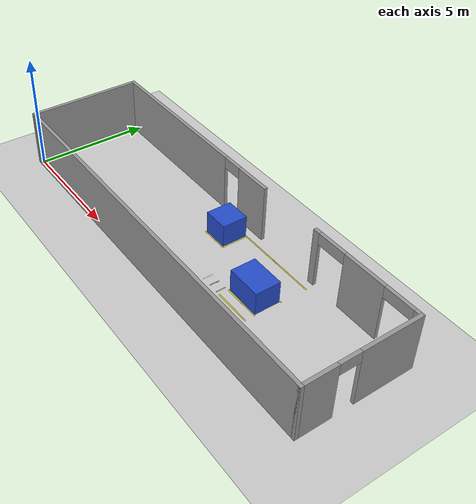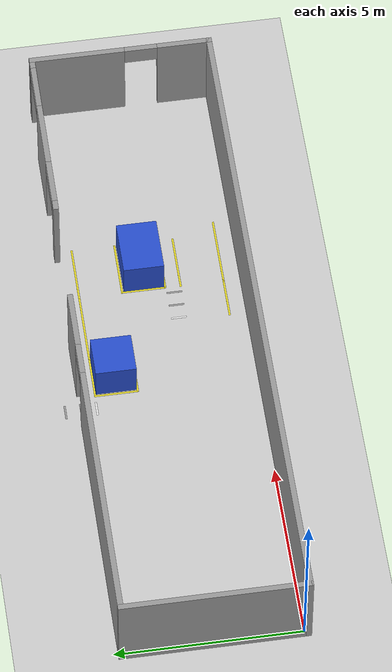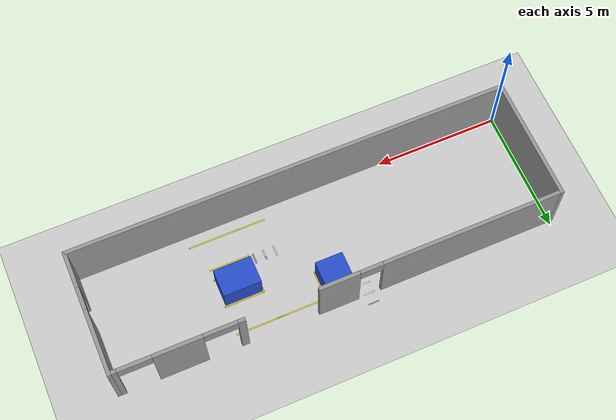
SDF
<sdf version="1.6">
 <world name="default">
  <model name="ground_plane">
   <static>1</static>
   <link name="link">
    <collision name="collision">
     <geometry><plane><normal>0 0 1</normal><size>100 100</size></plane></geometry>
     <surface><friction><ode><mu>100</mu><mu2>50</mu2></ode></friction></surface>
    </collision>
    <visual name="visual">
     <cast_shadows>0</cast_shadows>
     <geometry><plane><normal>0 0 1</normal><size>100 100</size></plane></geometry>
     <material>
      <script><uri>file://media/materials/scripts/gazebo.material</uri><name>Gazebo/Grey</name></script>
     </material>
    </visual>
   </link>
  </model>
  <model name="makine1_160x120">
   <link name="link_1">
    <inertial>
     <mass>1</mass>
     <inertia>
      <ixx>0.166667</ixx>
      <ixy>0</ixy>
      <ixz>0</ixz>
      <iyy>0.166667</iyy>
      <iyz>0</iyz>
      <izz>0.166667</izz>
     </inertia>
    </inertial>
    <visual name="visual">
     <pose>0 0 0.5 0 -0 0</pose>
     <geometry><box><size>1.5 1.1 1</size></box></geometry>
     <material>
      <lighting>1</lighting>
      <script><uri>file://media/materials/scripts/gazebo.material</uri><name>Gazebo/Blue</name></script>
     </material>
    </visual>
    <collision name="collision">
     <pose>0 0 0.5 0 -0 0</pose>
     <geometry><box><size>1.5 1.1 1</size></box></geometry>
     <surface>
      <friction>
       <ode><mu>1</mu><mu2>1</mu2><fdir1>0 0 0</fdir1><slip1>0</slip1><slip2>0</slip2></ode>
       <torsional>
        <coefficient>1</coefficient>
        <patch_radius>0</patch_radius>
        <surface_radius>0</surface_radius>
        <use_patch_radius>1</use_patch_radius>
        <ode><slip>0</slip></ode>
       </torsional>
      </friction>
      <bounce><restitution_coefficient>0</restitution_coefficient><threshold>1e+06</threshold></bounce>
      <contact>
       <collide_without_contact>0</collide_without_contact>
       <collide_without_contact_bitmask>1</collide_without_contact_bitmask>
       <collide_bitmask>1</collide_bitmask>
       <ode>
        <soft_cfm>0</soft_cfm>
        <soft_erp>0.2</soft_erp>
        <kp>1e+13</kp>
        <kd>1</kd>
        <max_vel>0.01</max_vel>
        <min_depth>0</min_depth>
       </ode>
       <bullet>
        <split_impulse>1</split_impulse>
        <split_impulse_penetration_threshold>-0.01</split_impulse_penetration_threshold>
        <soft_cfm>0</soft_cfm>
        <soft_erp>0.2</soft_erp>
        <kp>1e+13</kp>
        <kd>1</kd>
       </bullet>
      </contact>
     </surface>
    </collision>
   </link>
   <static>1</static>
   <pose>12 2.6 0 0 -0 0</pose>
  </model>
  <model name="line160cm">
   <link name="link_1">
    <inertial>
     <mass>1</mass>
     <inertia>
      <ixx>0.166667</ixx>
      <ixy>0</ixy>
      <ixz>0</ixz>
      <iyy>0.166667</iyy>
      <iyz>0</iyz>
      <izz>0.166667</izz>
     </inertia>
    </inertial>
    <visual name="visual">
     <geometry><box><size>1.6 0.05 0.001</size></box></geometry>
     <material>
      <script><uri>file://media/materials/scripts/gazebo.material</uri><name>Gazebo/Yellow</name></script>
     </material>
    </visual>
    <collision name="collision">
     <geometry><box><size>1.6 0.05 1e-05</size></box></geometry>
     <surface>
      <friction>
       <ode><mu>1</mu><mu2>1</mu2><fdir1>0 0 0</fdir1><slip1>0</slip1><slip2>0</slip2></ode>
       <torsional>
        <coefficient>1</coefficient>
        <patch_radius>0</patch_radius>
        <surface_radius>0</surface_radius>
        <use_patch_radius>1</use_patch_radius>
        <ode><slip>0</slip></ode>
       </torsional>
      </friction>
      <bounce><restitution_coefficient>0</restitution_coefficient><threshold>1e+06</threshold></bounce>
      <contact>
       <collide_without_contact>0</collide_without_contact>
       <collide_without_contact_bitmask>1</collide_without_contact_bitmask>
       <collide_bitmask>1</collide_bitmask>
       <ode>
        <soft_cfm>0</soft_cfm>
        <soft_erp>0.2</soft_erp>
        <kp>1e+13</kp>
        <kd>1</kd>
        <max_vel>0.01</max_vel>
        <min_depth>0</min_depth>
       </ode>
       <bullet>
        <split_impulse>1</split_impulse>
        <split_impulse_penetration_threshold>-0.01</split_impulse_penetration_threshold>
        <soft_cfm>0</soft_cfm>
        <soft_erp>0.2</soft_erp>
        <kp>1e+13</kp>
        <kd>1</kd>
       </bullet>
      </contact>
     </surface>
    </collision>
   </link>
   <static>1</static>
   <pose>12 2.02 0 0 -0 0</pose>
  </model>
  <model name="line160cm_0">
   <link name="link_1">
    <inertial>
     <mass>1</mass>
     <inertia>
      <ixx>0.166667</ixx>
      <ixy>0</ixy>
      <ixz>0</ixz>
      <iyy>0.166667</iyy>
      <iyz>0</iyz>
      <izz>0.166667</izz>
     </inertia>
    </inertial>
    <visual name="visual">
     <geometry><box><size>1.6 0.05 0.001</size></box></geometry>
     <material>
      <script><uri>file://media/materials/scripts/gazebo.material</uri><name>Gazebo/Yellow</name></script>
     </material>
    </visual>
    <collision name="collision">
     <geometry><box><size>1.6 0.05 1e-05</size></box></geometry>
     <surface>
      <friction>
       <ode><mu>1</mu><mu2>1</mu2><fdir1>0 0 0</fdir1><slip1>0</slip1><slip2>0</slip2></ode>
       <torsional>
        <coefficient>1</coefficient>
        <patch_radius>0</patch_radius>
        <surface_radius>0</surface_radius>
        <use_patch_radius>1</use_patch_radius>
        <ode><slip>0</slip></ode>
       </torsional>
      </friction>
      <bounce><restitution_coefficient>0</restitution_coefficient><threshold>1e+06</threshold></bounce>
      <contact>
       <collide_without_contact>0</collide_without_contact>
       <collide_without_contact_bitmask>1</collide_without_contact_bitmask>
       <collide_bitmask>1</collide_bitmask>
       <ode>
        <soft_cfm>0</soft_cfm>
        <soft_erp>0.2</soft_erp>
        <kp>1e+13</kp>
        <kd>1</kd>
        <max_vel>0.01</max_vel>
        <min_depth>0</min_depth>
       </ode>
       <bullet>
        <split_impulse>1</split_impulse>
        <split_impulse_penetration_threshold>-0.01</split_impulse_penetration_threshold>
        <soft_cfm>0</soft_cfm>
        <soft_erp>0.2</soft_erp>
        <kp>1e+13</kp>
        <kd>1</kd>
       </bullet>
      </contact>
     </surface>
    </collision>
   </link>
   <static>1</static>
   <pose>12 3.2 0 0 -0 0</pose>
  </model>
  <model name="line120cm_0">
   <link name="link_1">
    <inertial>
     <mass>1</mass>
     <inertia>
      <ixx>0.166667</ixx>
      <ixy>0</ixy>
      <ixz>0</ixz>
      <iyy>0.166667</iyy>
      <iyz>0</iyz>
      <izz>0.166667</izz>
     </inertia>
    </inertial>
    <visual name="visual">
     <geometry><box><size>1.2 0.05 0.001</size></box></geometry>
     <material>
      <script><uri>file://media/materials/scripts/gazebo.material</uri><name>Gazebo/Yellow</name></script>
     </material>
    </visual>
    <collision name="collision">
     <geometry><box><size>1.2 0.05 1e-05</size></box></geometry>
     <surface>
      <friction>
       <ode><mu>1</mu><mu2>1</mu2><fdir1>0 0 0</fdir1><slip1>0</slip1><slip2>0</slip2></ode>
       <torsional>
        <coefficient>1</coefficient>
        <patch_radius>0</patch_radius>
        <surface_radius>0</surface_radius>
        <use_patch_radius>1</use_patch_radius>
        <ode><slip>0</slip></ode>
       </torsional>
      </friction>
      <bounce><restitution_coefficient>0</restitution_coefficient><threshold>1e+06</threshold></bounce>
      <contact>
       <collide_without_contact>0</collide_without_contact>
       <collide_without_contact_bitmask>1</collide_without_contact_bitmask>
       <collide_bitmask>1</collide_bitmask>
       <ode>
        <soft_cfm>0</soft_cfm>
        <soft_erp>0.2</soft_erp>
        <kp>1e+13</kp>
        <kd>1</kd>
        <max_vel>0.01</max_vel>
        <min_depth>0</min_depth>
       </ode>
       <bullet>
        <split_impulse>1</split_impulse>
        <split_impulse_penetration_threshold>-0.01</split_impulse_penetration_threshold>
        <soft_cfm>0</soft_cfm>
        <soft_erp>0.2</soft_erp>
        <kp>1e+13</kp>
        <kd>1</kd>
       </bullet>
      </contact>
     </surface>
    </collision>
   </link>
   <static>1</static>
   <pose>11.225 2.6 0 0 -0 1.5708</pose>
  </model>
  <model name="makine2_120x120_0">
   <link name="link_0">
    <inertial>
     <mass>1</mass>
     <inertia>
      <ixx>0.166667</ixx>
      <ixy>0</ixy>
      <ixz>0</ixz>
      <iyy>0.166667</iyy>
      <iyz>0</iyz>
      <izz>0.166667</izz>
     </inertia>
    </inertial>
    <visual name="visual">
     <pose>0 0 0.5 0 -0 0</pose>
     <geometry><box><size>1.1 1.1 1</size></box></geometry>
     <material>
      <lighting>1</lighting>
      <script><uri>file://media/materials/scripts/gazebo.material</uri><name>Gazebo/Blue</name></script>
     </material>
    </visual>
    <collision name="collision">
     <pose>0 0 0.5 0 -0 0</pose>
     <geometry><box><size>1.1 1.1 1</size></box></geometry>
     <surface>
      <friction>
       <ode><mu>1</mu><mu2>1</mu2><fdir1>0 0 0</fdir1><slip1>0</slip1><slip2>0</slip2></ode>
       <torsional>
        <coefficient>1</coefficient>
        <patch_radius>0</patch_radius>
        <surface_radius>0</surface_radius>
        <use_patch_radius>1</use_patch_radius>
        <ode><slip>0</slip></ode>
       </torsional>
      </friction>
      <bounce><restitution_coefficient>0</restitution_coefficient><threshold>1e+06</threshold></bounce>
      <contact>
       <collide_without_contact>0</collide_without_contact>
       <collide_without_contact_bitmask>1</collide_without_contact_bitmask>
       <collide_bitmask>1</collide_bitmask>
       <ode>
        <soft_cfm>0</soft_cfm>
        <soft_erp>0.2</soft_erp>
        <kp>1e+13</kp>
        <kd>1</kd>
        <max_vel>0.01</max_vel>
        <min_depth>0</min_depth>
       </ode>
       <bullet>
        <split_impulse>1</split_impulse>
        <split_impulse_penetration_threshold>-0.01</split_impulse_penetration_threshold>
        <soft_cfm>0</soft_cfm>
        <soft_erp>0.2</soft_erp>
        <kp>1e+13</kp>
        <kd>1</kd>
       </bullet>
      </contact>
     </surface>
    </collision>
   </link>
   <static>1</static>
   <pose>8.6 3.8 0 0 -0 0</pose>
  </model>
  <model name="line120cm_5">
   <link name="link_1">
    <inertial>
     <mass>1</mass>
     <inertia>
      <ixx>0.166667</ixx>
      <ixy>0</ixy>
      <ixz>0</ixz>
      <iyy>0.166667</iyy>
      <iyz>0</iyz>
      <izz>0.166667</izz>
     </inertia>
    </inertial>
    <visual name="visual">
     <geometry><box><size>1.2 0.05 0.001</size></box></geometry>
     <material>
      <script><uri>file://media/materials/scripts/gazebo.material</uri><name>Gazebo/Yellow</name></script>
     </material>
    </visual>
    <collision name="collision">
     <geometry><box><size>1.2 0.05 1e-05</size></box></geometry>
     <surface>
      <friction>
       <ode><mu>1</mu><mu2>1</mu2><fdir1>0 0 0</fdir1><slip1>0</slip1><slip2>0</slip2></ode>
       <torsional>
        <coefficient>1</coefficient>
        <patch_radius>0</patch_radius>
        <surface_radius>0</surface_radius>
        <use_patch_radius>1</use_patch_radius>
        <ode><slip>0</slip></ode>
       </torsional>
      </friction>
      <bounce><restitution_coefficient>0</restitution_coefficient><threshold>1e+06</threshold></bounce>
      <contact>
       <collide_without_contact>0</collide_without_contact>
       <collide_without_contact_bitmask>1</collide_without_contact_bitmask>
       <collide_bitmask>1</collide_bitmask>
       <ode>
        <soft_cfm>0</soft_cfm>
        <soft_erp>0.2</soft_erp>
        <kp>1e+13</kp>
        <kd>1</kd>
        <max_vel>0.01</max_vel>
        <min_depth>0</min_depth>
       </ode>
       <bullet>
        <split_impulse>1</split_impulse>
        <split_impulse_penetration_threshold>-0.01</split_impulse_penetration_threshold>
        <soft_cfm>0</soft_cfm>
        <soft_erp>0.2</soft_erp>
        <kp>1e+13</kp>
        <kd>1</kd>
       </bullet>
      </contact>
     </surface>
    </collision>
   </link>
   <static>1</static>
   <pose>8.6 4.375 0 0 -0 0</pose>
  </model>
  <model name="line120cm_6">
   <link name="link_1">
    <inertial>
     <mass>1</mass>
     <inertia>
      <ixx>0.166667</ixx>
      <ixy>0</ixy>
      <ixz>0</ixz>
      <iyy>0.166667</iyy>
      <iyz>0</iyz>
      <izz>0.166667</izz>
     </inertia>
    </inertial>
    <visual name="visual">
     <geometry><box><size>1.2 0.05 0.001</size></box></geometry>
     <material>
      <script><uri>file://media/materials/scripts/gazebo.material</uri><name>Gazebo/Yellow</name></script>
     </material>
    </visual>
    <collision name="collision">
     <geometry><box><size>1.2 0.05 1e-05</size></box></geometry>
     <surface>
      <friction>
       <ode><mu>1</mu><mu2>1</mu2><fdir1>0 0 0</fdir1><slip1>0</slip1><slip2>0</slip2></ode>
       <torsional>
        <coefficient>1</coefficient>
        <patch_radius>0</patch_radius>
        <surface_radius>0</surface_radius>
        <use_patch_radius>1</use_patch_radius>
        <ode><slip>0</slip></ode>
       </torsional>
      </friction>
      <bounce><restitution_coefficient>0</restitution_coefficient><threshold>1e+06</threshold></bounce>
      <contact>
       <collide_without_contact>0</collide_without_contact>
       <collide_without_contact_bitmask>1</collide_without_contact_bitmask>
       <collide_bitmask>1</collide_bitmask>
       <ode>
        <soft_cfm>0</soft_cfm>
        <soft_erp>0.2</soft_erp>
        <kp>1e+13</kp>
        <kd>1</kd>
        <max_vel>0.01</max_vel>
        <min_depth>0</min_depth>
       </ode>
       <bullet>
        <split_impulse>1</split_impulse>
        <split_impulse_penetration_threshold>-0.01</split_impulse_penetration_threshold>
        <soft_cfm>0</soft_cfm>
        <soft_erp>0.2</soft_erp>
        <kp>1e+13</kp>
        <kd>1</kd>
       </bullet>
      </contact>
     </surface>
    </collision>
   </link>
   <static>1</static>
   <pose>8 3.8 0 0 -0 1.5708</pose>
  </model>
  <model name="line120cm_7">
   <link name="link_1">
    <inertial>
     <mass>1</mass>
     <inertia>
      <ixx>0.166667</ixx>
      <ixy>0</ixy>
      <ixz>0</ixz>
      <iyy>0.166667</iyy>
      <iyz>0</iyz>
      <izz>0.166667</izz>
     </inertia>
    </inertial>
    <visual name="visual">
     <geometry><box><size>1.2 0.05 0.001</size></box></geometry>
     <material>
      <script><uri>file://media/materials/scripts/gazebo.material</uri><name>Gazebo/Yellow</name></script>
     </material>
    </visual>
    <collision name="collision">
     <geometry><box><size>1.2 0.05 1e-05</size></box></geometry>
     <surface>
      <friction>
       <ode><mu>1</mu><mu2>1</mu2><fdir1>0 0 0</fdir1><slip1>0</slip1><slip2>0</slip2></ode>
       <torsional>
        <coefficient>1</coefficient>
        <patch_radius>0</patch_radius>
        <surface_radius>0</surface_radius>
        <use_patch_radius>1</use_patch_radius>
        <ode><slip>0</slip></ode>
       </torsional>
      </friction>
      <bounce><restitution_coefficient>0</restitution_coefficient><threshold>1e+06</threshold></bounce>
      <contact>
       <collide_without_contact>0</collide_without_contact>
       <collide_without_contact_bitmask>1</collide_without_contact_bitmask>
       <collide_bitmask>1</collide_bitmask>
       <ode>
        <soft_cfm>0</soft_cfm>
        <soft_erp>0.2</soft_erp>
        <kp>1e+13</kp>
        <kd>1</kd>
        <max_vel>0.01</max_vel>
        <min_depth>0</min_depth>
       </ode>
       <bullet>
        <split_impulse>1</split_impulse>
        <split_impulse_penetration_threshold>-0.01</split_impulse_penetration_threshold>
        <soft_cfm>0</soft_cfm>
        <soft_erp>0.2</soft_erp>
        <kp>1e+13</kp>
        <kd>1</kd>
       </bullet>
      </contact>
     </surface>
    </collision>
   </link>
   <static>1</static>
   <pose>8.6 3.225 0 0 -0 0</pose>
  </model>
  <model name="line120cm_8">
   <link name="link_1">
    <inertial>
     <mass>1</mass>
     <inertia>
      <ixx>0.166667</ixx>
      <ixy>0</ixy>
      <ixz>0</ixz>
      <iyy>0.166667</iyy>
      <iyz>0</iyz>
      <izz>0.166667</izz>
     </inertia>
    </inertial>
    <visual name="visual">
     <geometry><box><size>1.2 0.05 0.001</size></box></geometry>
     <material>
      <script><uri>file://media/materials/scripts/gazebo.material</uri><name>Gazebo/Yellow</name></script>
     </material>
    </visual>
    <collision name="collision">
     <geometry><box><size>1.2 0.05 1e-05</size></box></geometry>
     <surface>
      <friction>
       <ode><mu>1</mu><mu2>1</mu2><fdir1>0 0 0</fdir1><slip1>0</slip1><slip2>0</slip2></ode>
       <torsional>
        <coefficient>1</coefficient>
        <patch_radius>0</patch_radius>
        <surface_radius>0</surface_radius>
        <use_patch_radius>1</use_patch_radius>
        <ode><slip>0</slip></ode>
       </torsional>
      </friction>
      <bounce><restitution_coefficient>0</restitution_coefficient><threshold>1e+06</threshold></bounce>
      <contact>
       <collide_without_contact>0</collide_without_contact>
       <collide_without_contact_bitmask>1</collide_without_contact_bitmask>
       <collide_bitmask>1</collide_bitmask>
       <ode>
        <soft_cfm>0</soft_cfm>
        <soft_erp>0.2</soft_erp>
        <kp>1e+13</kp>
        <kd>1</kd>
        <max_vel>0.01</max_vel>
        <min_depth>0</min_depth>
       </ode>
       <bullet>
        <split_impulse>1</split_impulse>
        <split_impulse_penetration_threshold>-0.01</split_impulse_penetration_threshold>
        <soft_cfm>0</soft_cfm>
        <soft_erp>0.2</soft_erp>
        <kp>1e+13</kp>
        <kd>1</kd>
       </bullet>
      </contact>
     </surface>
    </collision>
   </link>
   <static>1</static>
   <pose>9.175 3.8 0 0 -0 1.5708</pose>
  </model>
  <model name="line160cm_1">
   <link name="link_1">
    <inertial>
     <mass>1</mass>
     <inertia>
      <ixx>0.166667</ixx>
      <ixy>0</ixy>
      <ixz>0</ixz>
      <iyy>0.166667</iyy>
      <iyz>0</iyz>
      <izz>0.166667</izz>
     </inertia>
    </inertial>
    <visual name="visual">
     <geometry><box><size>1.6 0.05 0.001</size></box></geometry>
     <material>
      <script><uri>file://media/materials/scripts/gazebo.material</uri><name>Gazebo/Yellow</name></script>
     </material>
    </visual>
    <collision name="collision">
     <geometry><box><size>1.6 0.05 1e-05</size></box></geometry>
     <surface>
      <friction>
       <ode><mu>1</mu><mu2>1</mu2><fdir1>0 0 0</fdir1><slip1>0</slip1><slip2>0</slip2></ode>
       <torsional>
        <coefficient>1</coefficient>
        <patch_radius>0</patch_radius>
        <surface_radius>0</surface_radius>
        <use_patch_radius>1</use_patch_radius>
        <ode><slip>0</slip></ode>
       </torsional>
      </friction>
      <bounce><restitution_coefficient>0</restitution_coefficient><threshold>1e+06</threshold></bounce>
      <contact>
       <collide_without_contact>0</collide_without_contact>
       <collide_without_contact_bitmask>1</collide_without_contact_bitmask>
       <collide_bitmask>1</collide_bitmask>
       <ode>
        <soft_cfm>0</soft_cfm>
        <soft_erp>0.2</soft_erp>
        <kp>1e+13</kp>
        <kd>1</kd>
        <max_vel>0.01</max_vel>
        <min_depth>0</min_depth>
       </ode>
       <bullet>
        <split_impulse>1</split_impulse>
        <split_impulse_penetration_threshold>-0.01</split_impulse_penetration_threshold>
        <soft_cfm>0</soft_cfm>
        <soft_erp>0.2</soft_erp>
        <kp>1e+13</kp>
        <kd>1</kd>
       </bullet>
      </contact>
     </surface>
    </collision>
   </link>
   <static>1</static>
   <pose>12 1.6 0 0 -0 0</pose>
  </model>
  <model name="whiteLine_42">
   <link name="link_3">
    <inertial>
     <mass>1</mass>
     <inertia>
      <ixx>0.166667</ixx>
      <ixy>0</ixy>
      <ixz>0</ixz>
      <iyy>0.166667</iyy>
      <iyz>0</iyz>
      <izz>0.166667</izz>
     </inertia>
    </inertial>
    <visual name="visual">
     <pose>-0.21 0 0 0 -0 0</pose>
     <geometry><box><size>0.05 0.42 0.001</size></box></geometry>
     <material>
      <lighting>1</lighting>
      <script><uri>file://media/materials/scripts/gazebo.material</uri><name>Gazebo/White</name></script>
      <shader type="pixel"><normal_map>__default__</normal_map></shader>
      <ambient>1 1 1 1</ambient>
      <diffuse>1 1 1 1</diffuse>
      <specular>0.01 0.01 0.01 1</specular>
      <emissive>0 0 0 1</emissive>
     </material>
    </visual>
    <visual name="ModelPreview_7::link_3::visual_1">
     <pose>0.21 0 0 0 -0 0</pose>
     <geometry><box><size>0.05 0.42 0.001</size></box></geometry>
     <material>
      <lighting>1</lighting>
      <script><uri>file://media/materials/scripts/gazebo.material</uri><name>Gazebo/Grey</name></script>
      <shader type="pixel"><normal_map>__default__</normal_map></shader>
      <ambient>1 1 1 1</ambient>
      <diffuse>1 1 1 1</diffuse>
      <specular>0.01 0.01 0.01 1</specular>
      <emissive>0 0 0 1</emissive>
     </material>
    </visual>
    <collision name="collision">
     <pose>-0.21 0 0 0 -0 0</pose>
     <geometry><box><size>0.05 0.42 1e-05</size></box></geometry>
     <surface>
      <friction>
       <ode><mu>1</mu><mu2>1</mu2><fdir1>0 0 0</fdir1><slip1>0</slip1><slip2>0</slip2></ode>
       <torsional>
        <coefficient>1</coefficient>
        <patch_radius>0</patch_radius>
        <surface_radius>0</surface_radius>
        <use_patch_radius>1</use_patch_radius>
        <ode><slip>0</slip></ode>
       </torsional>
      </friction>
      <bounce><restitution_coefficient>0</restitution_coefficient><threshold>1e+06</threshold></bounce>
      <contact>
       <collide_without_contact>0</collide_without_contact>
       <collide_without_contact_bitmask>1</collide_without_contact_bitmask>
       <collide_bitmask>1</collide_bitmask>
       <ode>
        <soft_cfm>0</soft_cfm>
        <soft_erp>0.2</soft_erp>
        <kp>1e+13</kp>
        <kd>1</kd>
        <max_vel>0.01</max_vel>
        <min_depth>0</min_depth>
       </ode>
       <bullet>
        <split_impulse>1</split_impulse>
        <split_impulse_penetration_threshold>-0.01</split_impulse_penetration_threshold>
        <soft_cfm>0</soft_cfm>
        <soft_erp>0.2</soft_erp>
        <kp>1e+13</kp>
        <kd>1</kd>
       </bullet>
      </contact>
     </surface>
    </collision>
    <collision name="collision_1">
     <pose>0.21 0 0 0 -0 0</pose>
     <geometry><box><size>0.05 0.42 1e-05</size></box></geometry>
     <surface>
      <friction>
       <ode><mu>1</mu><mu2>1</mu2><fdir1>0 0 0</fdir1><slip1>0</slip1><slip2>0</slip2></ode>
       <torsional>
        <coefficient>1</coefficient>
        <patch_radius>0</patch_radius>
        <surface_radius>0</surface_radius>
        <use_patch_radius>1</use_patch_radius>
        <ode><slip>0</slip></ode>
       </torsional>
      </friction>
      <bounce><restitution_coefficient>0</restitution_coefficient><threshold>1e+06</threshold></bounce>
      <contact>
       <collide_without_contact>0</collide_without_contact>
       <collide_without_contact_bitmask>1</collide_without_contact_bitmask>
       <collide_bitmask>1</collide_bitmask>
       <ode>
        <soft_cfm>0</soft_cfm>
        <soft_erp>0.2</soft_erp>
        <kp>1e+13</kp>
        <kd>1</kd>
        <max_vel>0.01</max_vel>
        <min_depth>0</min_depth>
       </ode>
       <bullet>
        <split_impulse>1</split_impulse>
        <split_impulse_penetration_threshold>-0.01</split_impulse_penetration_threshold>
        <soft_cfm>0</soft_cfm>
        <soft_erp>0.2</soft_erp>
        <kp>1e+13</kp>
        <kd>1</kd>
       </bullet>
      </contact>
     </surface>
    </collision>
   </link>
   <static>1</static>
   <pose>10.4126 1.8 0 0 -0 0</pose>
  </model>
  <model name="whiteLine_42_0">
   <link name="link_3">
    <inertial>
     <mass>1</mass>
     <inertia>
      <ixx>0.166667</ixx>
      <ixy>0</ixy>
      <ixz>0</ixz>
      <iyy>0.166667</iyy>
      <iyz>0</iyz>
      <izz>0.166667</izz>
     </inertia>
    </inertial>
    <visual name="visual">
     <pose>-0.21 0 0 0 -0 0</pose>
     <geometry><box><size>0.05 0.42 0.001</size></box></geometry>
     <material>
      <lighting>1</lighting>
      <script><uri>file://media/materials/scripts/gazebo.material</uri><name>Gazebo/White</name></script>
      <shader type="pixel"><normal_map>__default__</normal_map></shader>
      <ambient>1 1 1 1</ambient>
      <diffuse>1 1 1 1</diffuse>
      <specular>0.01 0.01 0.01 1</specular>
      <emissive>0 0 0 1</emissive>
     </material>
    </visual>
    <visual name="ModelPreview_7::link_3::visual_1">
     <pose>0.21 0 0 0 -0 0</pose>
     <geometry><box><size>0.05 0.42 0.001</size></box></geometry>
     <material>
      <lighting>1</lighting>
      <script><uri>file://media/materials/scripts/gazebo.material</uri><name>Gazebo/Grey</name></script>
      <shader type="pixel"><normal_map>__default__</normal_map></shader>
      <ambient>1 1 1 1</ambient>
      <diffuse>1 1 1 1</diffuse>
      <specular>0.01 0.01 0.01 1</specular>
      <emissive>0 0 0 1</emissive>
     </material>
    </visual>
    <collision name="collision">
     <pose>-0.21 0 0 0 -0 0</pose>
     <geometry><box><size>0.05 0.42 1e-05</size></box></geometry>
     <surface>
      <friction>
       <ode><mu>1</mu><mu2>1</mu2><fdir1>0 0 0</fdir1><slip1>0</slip1><slip2>0</slip2></ode>
       <torsional>
        <coefficient>1</coefficient>
        <patch_radius>0</patch_radius>
        <surface_radius>0</surface_radius>
        <use_patch_radius>1</use_patch_radius>
        <ode><slip>0</slip></ode>
       </torsional>
      </friction>
      <bounce><restitution_coefficient>0</restitution_coefficient><threshold>1e+06</threshold></bounce>
      <contact>
       <collide_without_contact>0</collide_without_contact>
       <collide_without_contact_bitmask>1</collide_without_contact_bitmask>
       <collide_bitmask>1</collide_bitmask>
       <ode>
        <soft_cfm>0</soft_cfm>
        <soft_erp>0.2</soft_erp>
        <kp>1e+13</kp>
        <kd>1</kd>
        <max_vel>0.01</max_vel>
        <min_depth>0</min_depth>
       </ode>
       <bullet>
        <split_impulse>1</split_impulse>
        <split_impulse_penetration_threshold>-0.01</split_impulse_penetration_threshold>
        <soft_cfm>0</soft_cfm>
        <soft_erp>0.2</soft_erp>
        <kp>1e+13</kp>
        <kd>1</kd>
       </bullet>
      </contact>
     </surface>
    </collision>
    <collision name="collision_1">
     <pose>0.21 0 0 0 -0 0</pose>
     <geometry><box><size>0.05 0.42 1e-05</size></box></geometry>
     <surface>
      <friction>
       <ode><mu>1</mu><mu2>1</mu2><fdir1>0 0 0</fdir1><slip1>0</slip1><slip2>0</slip2></ode>
       <torsional>
        <coefficient>1</coefficient>
        <patch_radius>0</patch_radius>
        <surface_radius>0</surface_radius>
        <use_patch_radius>1</use_patch_radius>
        <ode><slip>0</slip></ode>
       </torsional>
      </friction>
      <bounce><restitution_coefficient>0</restitution_coefficient><threshold>1e+06</threshold></bounce>
      <contact>
       <collide_without_contact>0</collide_without_contact>
       <collide_without_contact_bitmask>1</collide_without_contact_bitmask>
       <collide_bitmask>1</collide_bitmask>
       <ode>
        <soft_cfm>0</soft_cfm>
        <soft_erp>0.2</soft_erp>
        <kp>1e+13</kp>
        <kd>1</kd>
        <max_vel>0.01</max_vel>
        <min_depth>0</min_depth>
       </ode>
       <bullet>
        <split_impulse>1</split_impulse>
        <split_impulse_penetration_threshold>-0.01</split_impulse_penetration_threshold>
        <soft_cfm>0</soft_cfm>
        <soft_erp>0.2</soft_erp>
        <kp>1e+13</kp>
        <kd>1</kd>
       </bullet>
      </contact>
     </surface>
    </collision>
   </link>
   <static>1</static>
   <pose>10.8318 1.8 0 0 -0 0</pose>
  </model>
  <model name="line2m_0">
   <link name="link_0">
    <inertial>
     <mass>1</mass>
     <inertia>
      <ixx>0.166667</ixx>
      <ixy>0</ixy>
      <ixz>0</ixz>
      <iyy>0.166667</iyy>
      <iyz>0</iyz>
      <izz>0.166667</izz>
     </inertia>
    </inertial>
    <visual name="visual">
     <geometry><box><size>2 0.05 0.001</size></box></geometry>
     <material>
      <lighting>1</lighting>
      <script><uri>file://media/materials/scripts/gazebo.material</uri><name>Gazebo/Yellow</name></script>
     </material>
    </visual>
    <collision name="collision">
     <geometry><box><size>2 0.05 1e-05</size></box></geometry>
     <surface>
      <friction>
       <ode><mu>1</mu><mu2>1</mu2><fdir1>0 0 0</fdir1><slip1>0</slip1><slip2>0</slip2></ode>
       <torsional>
        <coefficient>1</coefficient>
        <patch_radius>0</patch_radius>
        <surface_radius>0</surface_radius>
        <use_patch_radius>1</use_patch_radius>
        <ode><slip>0</slip></ode>
       </torsional>
      </friction>
      <bounce><restitution_coefficient>0</restitution_coefficient><threshold>1e+06</threshold></bounce>
      <contact>
       <collide_without_contact>0</collide_without_contact>
       <collide_without_contact_bitmask>1</collide_without_contact_bitmask>
       <collide_bitmask>1</collide_bitmask>
       <ode>
        <soft_cfm>0</soft_cfm>
        <soft_erp>0.2</soft_erp>
        <kp>1e+13</kp>
        <kd>1</kd>
        <max_vel>0.01</max_vel>
        <min_depth>0</min_depth>
       </ode>
       <bullet>
        <split_impulse>1</split_impulse>
        <split_impulse_penetration_threshold>-0.01</split_impulse_penetration_threshold>
        <soft_cfm>0</soft_cfm>
        <soft_erp>0.2</soft_erp>
        <kp>1e+13</kp>
        <kd>1</kd>
       </bullet>
      </contact>
     </surface>
    </collision>
   </link>
   <static>1</static>
   <pose>11.8 4.375 0 0 -0 0</pose>
  </model>
  <model name="line2m_1">
   <link name="link_0">
    <inertial>
     <mass>1</mass>
     <inertia>
      <ixx>0.166667</ixx>
      <ixy>0</ixy>
      <ixz>0</ixz>
      <iyy>0.166667</iyy>
      <iyz>0</iyz>
      <izz>0.166667</izz>
     </inertia>
    </inertial>
    <visual name="visual">
     <geometry><box><size>2 0.05 0.001</size></box></geometry>
     <material>
      <lighting>1</lighting>
      <script><uri>file://media/materials/scripts/gazebo.material</uri><name>Gazebo/Yellow</name></script>
     </material>
    </visual>
    <collision name="collision">
     <geometry><box><size>2 0.05 1e-05</size></box></geometry>
     <surface>
      <friction>
       <ode><mu>1</mu><mu2>1</mu2><fdir1>0 0 0</fdir1><slip1>0</slip1><slip2>0</slip2></ode>
       <torsional>
        <coefficient>1</coefficient>
        <patch_radius>0</patch_radius>
        <surface_radius>0</surface_radius>
        <use_patch_radius>1</use_patch_radius>
        <ode><slip>0</slip></ode>
       </torsional>
      </friction>
      <bounce><restitution_coefficient>0</restitution_coefficient><threshold>1e+06</threshold></bounce>
      <contact>
       <collide_without_contact>0</collide_without_contact>
       <collide_without_contact_bitmask>1</collide_without_contact_bitmask>
       <collide_bitmask>1</collide_bitmask>
       <ode>
        <soft_cfm>0</soft_cfm>
        <soft_erp>0.2</soft_erp>
        <kp>1e+13</kp>
        <kd>1</kd>
        <max_vel>0.01</max_vel>
        <min_depth>0</min_depth>
       </ode>
       <bullet>
        <split_impulse>1</split_impulse>
        <split_impulse_penetration_threshold>-0.01</split_impulse_penetration_threshold>
        <soft_cfm>0</soft_cfm>
        <soft_erp>0.2</soft_erp>
        <kp>1e+13</kp>
        <kd>1</kd>
       </bullet>
      </contact>
     </surface>
    </collision>
   </link>
   <static>1</static>
   <pose>10.1924 4.375 0 0 -0 0</pose>
  </model>
  <model name="whiteLine_42_4">
   <link name="link_3">
    <inertial>
     <mass>1</mass>
     <inertia>
      <ixx>0.166667</ixx>
      <ixy>0</ixy>
      <ixz>0</ixz>
      <iyy>0.166667</iyy>
      <iyz>0</iyz>
      <izz>0.166667</izz>
     </inertia>
    </inertial>
    <visual name="visual">
     <pose>-0.21 0 0 0 -0 0</pose>
     <geometry><box><size>0.05 0.42 0.001</size></box></geometry>
     <material>
      <lighting>1</lighting>
      <script><uri>file://media/materials/scripts/gazebo.material</uri><name>Gazebo/White</name></script>
      <shader type="pixel"><normal_map>__default__</normal_map></shader>
      <ambient>1 1 1 1</ambient>
      <diffuse>1 1 1 1</diffuse>
      <specular>0.01 0.01 0.01 1</specular>
      <emissive>0 0 0 1</emissive>
     </material>
    </visual>
    <visual name="ModelPreview_7::link_3::visual_1">
     <pose>0.21 0 0 0 -0 0</pose>
     <geometry><box><size>0.05 0.42 0.001</size></box></geometry>
     <material>
      <lighting>1</lighting>
      <script><uri>file://media/materials/scripts/gazebo.material</uri><name>Gazebo/Grey</name></script>
      <shader type="pixel"><normal_map>__default__</normal_map></shader>
      <ambient>1 1 1 1</ambient>
      <diffuse>1 1 1 1</diffuse>
      <specular>0.01 0.01 0.01 1</specular>
      <emissive>0 0 0 1</emissive>
     </material>
    </visual>
    <collision name="collision">
     <pose>-0.21 0 0 0 -0 0</pose>
     <geometry><box><size>0.05 0.42 1e-05</size></box></geometry>
     <surface>
      <friction>
       <ode><mu>1</mu><mu2>1</mu2><fdir1>0 0 0</fdir1><slip1>0</slip1><slip2>0</slip2></ode>
       <torsional>
        <coefficient>1</coefficient>
        <patch_radius>0</patch_radius>
        <surface_radius>0</surface_radius>
        <use_patch_radius>1</use_patch_radius>
        <ode><slip>0</slip></ode>
       </torsional>
      </friction>
      <bounce><restitution_coefficient>0</restitution_coefficient><threshold>1e+06</threshold></bounce>
      <contact>
       <collide_without_contact>0</collide_without_contact>
       <collide_without_contact_bitmask>1</collide_without_contact_bitmask>
       <collide_bitmask>1</collide_bitmask>
       <ode>
        <soft_cfm>0</soft_cfm>
        <soft_erp>0.2</soft_erp>
        <kp>1e+13</kp>
        <kd>1</kd>
        <max_vel>0.01</max_vel>
        <min_depth>0</min_depth>
       </ode>
       <bullet>
        <split_impulse>1</split_impulse>
        <split_impulse_penetration_threshold>-0.01</split_impulse_penetration_threshold>
        <soft_cfm>0</soft_cfm>
        <soft_erp>0.2</soft_erp>
        <kp>1e+13</kp>
        <kd>1</kd>
       </bullet>
      </contact>
     </surface>
    </collision>
    <collision name="collision_1">
     <pose>0.21 0 0 0 -0 0</pose>
     <geometry><box><size>0.05 0.42 1e-05</size></box></geometry>
     <surface>
      <friction>
       <ode><mu>1</mu><mu2>1</mu2><fdir1>0 0 0</fdir1><slip1>0</slip1><slip2>0</slip2></ode>
       <torsional>
        <coefficient>1</coefficient>
        <patch_radius>0</patch_radius>
        <surface_radius>0</surface_radius>
        <use_patch_radius>1</use_patch_radius>
        <ode><slip>0</slip></ode>
       </torsional>
      </friction>
      <bounce><restitution_coefficient>0</restitution_coefficient><threshold>1e+06</threshold></bounce>
      <contact>
       <collide_without_contact>0</collide_without_contact>
       <collide_without_contact_bitmask>1</collide_without_contact_bitmask>
       <collide_bitmask>1</collide_bitmask>
       <ode>
        <soft_cfm>0</soft_cfm>
        <soft_erp>0.2</soft_erp>
        <kp>1e+13</kp>
        <kd>1</kd>
        <max_vel>0.01</max_vel>
        <min_depth>0</min_depth>
       </ode>
       <bullet>
        <split_impulse>1</split_impulse>
        <split_impulse_penetration_threshold>-0.01</split_impulse_penetration_threshold>
        <soft_cfm>0</soft_cfm>
        <soft_erp>0.2</soft_erp>
        <kp>1e+13</kp>
        <kd>1</kd>
       </bullet>
      </contact>
     </surface>
    </collision>
   </link>
   <static>1</static>
   <pose>7.6 4.6 0 0 -0 1.5708</pose>
  </model>
  <model name="whiteLine_42_5">
   <link name="link_3">
    <inertial>
     <mass>1</mass>
     <inertia>
      <ixx>0.166667</ixx>
      <ixy>0</ixy>
      <ixz>0</ixz>
      <iyy>0.166667</iyy>
      <iyz>0</iyz>
      <izz>0.166667</izz>
     </inertia>
    </inertial>
    <visual name="visual">
     <pose>-0.21 0 0 0 -0 0</pose>
     <geometry><box><size>0.05 0.42 0.001</size></box></geometry>
     <material>
      <lighting>1</lighting>
      <script><uri>file://media/materials/scripts/gazebo.material</uri><name>Gazebo/White</name></script>
      <shader type="pixel"><normal_map>__default__</normal_map></shader>
      <ambient>1 1 1 1</ambient>
      <diffuse>1 1 1 1</diffuse>
      <specular>0.01 0.01 0.01 1</specular>
      <emissive>0 0 0 1</emissive>
     </material>
    </visual>
    <visual name="ModelPreview_7::link_3::visual_1">
     <pose>0.21 0 0 0 -0 0</pose>
     <geometry><box><size>0.05 0.42 0.001</size></box></geometry>
     <material>
      <lighting>1</lighting>
      <script><uri>file://media/materials/scripts/gazebo.material</uri><name>Gazebo/Grey</name></script>
      <shader type="pixel"><normal_map>__default__</normal_map></shader>
      <ambient>1 1 1 1</ambient>
      <diffuse>1 1 1 1</diffuse>
      <specular>0.01 0.01 0.01 1</specular>
      <emissive>0 0 0 1</emissive>
     </material>
    </visual>
    <collision name="collision">
     <pose>-0.21 0 0 0 -0 0</pose>
     <geometry><box><size>0.05 0.42 1e-05</size></box></geometry>
     <surface>
      <friction>
       <ode><mu>1</mu><mu2>1</mu2><fdir1>0 0 0</fdir1><slip1>0</slip1><slip2>0</slip2></ode>
       <torsional>
        <coefficient>1</coefficient>
        <patch_radius>0</patch_radius>
        <surface_radius>0</surface_radius>
        <use_patch_radius>1</use_patch_radius>
        <ode><slip>0</slip></ode>
       </torsional>
      </friction>
      <bounce><restitution_coefficient>0</restitution_coefficient><threshold>1e+06</threshold></bounce>
      <contact>
       <collide_without_contact>0</collide_without_contact>
       <collide_without_contact_bitmask>1</collide_without_contact_bitmask>
       <collide_bitmask>1</collide_bitmask>
       <ode>
        <soft_cfm>0</soft_cfm>
        <soft_erp>0.2</soft_erp>
        <kp>1e+13</kp>
        <kd>1</kd>
        <max_vel>0.01</max_vel>
        <min_depth>0</min_depth>
       </ode>
       <bullet>
        <split_impulse>1</split_impulse>
        <split_impulse_penetration_threshold>-0.01</split_impulse_penetration_threshold>
        <soft_cfm>0</soft_cfm>
        <soft_erp>0.2</soft_erp>
        <kp>1e+13</kp>
        <kd>1</kd>
       </bullet>
      </contact>
     </surface>
    </collision>
    <collision name="collision_1">
     <pose>0.21 0 0 0 -0 0</pose>
     <geometry><box><size>0.05 0.42 1e-05</size></box></geometry>
     <surface>
      <friction>
       <ode><mu>1</mu><mu2>1</mu2><fdir1>0 0 0</fdir1><slip1>0</slip1><slip2>0</slip2></ode>
       <torsional>
        <coefficient>1</coefficient>
        <patch_radius>0</patch_radius>
        <surface_radius>0</surface_radius>
        <use_patch_radius>1</use_patch_radius>
        <ode><slip>0</slip></ode>
       </torsional>
      </friction>
      <bounce><restitution_coefficient>0</restitution_coefficient><threshold>1e+06</threshold></bounce>
      <contact>
       <collide_without_contact>0</collide_without_contact>
       <collide_without_contact_bitmask>1</collide_without_contact_bitmask>
       <collide_bitmask>1</collide_bitmask>
       <ode>
        <soft_cfm>0</soft_cfm>
        <soft_erp>0.2</soft_erp>
        <kp>1e+13</kp>
        <kd>1</kd>
        <max_vel>0.01</max_vel>
        <min_depth>0</min_depth>
       </ode>
       <bullet>
        <split_impulse>1</split_impulse>
        <split_impulse_penetration_threshold>-0.01</split_impulse_penetration_threshold>
        <soft_cfm>0</soft_cfm>
        <soft_erp>0.2</soft_erp>
        <kp>1e+13</kp>
        <kd>1</kd>
       </bullet>
      </contact>
     </surface>
    </collision>
   </link>
   <static>1</static>
   <pose>7.6 5.02196 0 0 -0 1.5708</pose>
  </model>
  <model name="demoPlaceWallv3">
   <pose>8.719 2.353 0 0 -0 0</pose>
   <link name="Wall_0">
    <collision name="Wall_0_Collision">
     <geometry><box><size>17.75 0.15 2.5</size></box></geometry>
     <pose>0 0 1.25 0 -0 0</pose>
    </collision>
    <visual name="Wall_0_Visual">
     <pose>0 0 1.25 0 -0 0</pose>
     <geometry><box><size>17.75 0.15 2.5</size></box></geometry>
     <material>
      <script><uri>file://media/materials/scripts/gazebo.material</uri><name>Gazebo/Grey</name></script>
      <ambient>1 1 1 1</ambient>
     </material>
     <meta><layer>0</layer></meta>
    </visual>
    <pose>0 -2.447 0 0 -0 0</pose>
   </link>
   <link name="Wall_2">
    <collision name="Wall_2_Collision">
     <geometry><box><size>5.044 0.15 2.5</size></box></geometry>
     <pose>0 0 1.25 0 -0 0</pose>
    </collision>
    <visual name="Wall_2_Visual">
     <pose>0 0 1.25 0 -0 0</pose>
     <geometry><box><size>5.044 0.15 2.5</size></box></geometry>
     <material>
      <script><uri>file://media/materials/scripts/gazebo.material</uri><name>Gazebo/Grey</name></script>
      <ambient>1 1 1 1</ambient>
     </material>
     <meta><layer>0</layer></meta>
    </visual>
    <pose>-8.8 0 0 0 -0 1.5708</pose>
   </link>
   <link name="Wall_4">
    <pose>0 2.447 0 0 -0 0</pose>
    <visual name="Wall_4_Visual_0">
     <pose>-5.222 0 1.25 0 -0 0</pose>
     <geometry><box><size>7.306 0.15 2.5</size></box></geometry>
     <material>
      <script><uri>file://media/materials/scripts/gazebo.material</uri><name>Gazebo/Grey</name></script>
      <ambient>1 1 1 1</ambient>
     </material>
     <meta><layer>0</layer></meta>
    </visual>
    <collision name="Wall_4_Collision_0">
     <geometry><box><size>7.306 0.15 2.5</size></box></geometry>
     <pose>-5.222 0 1.25 0 -0 0</pose>
    </collision>
    <visual name="Wall_4_Visual_1">
     <pose>0.136 0 1.25 0 -0 0</pose>
     <geometry><box><size>1.61 0.15 2.5</size></box></geometry>
     <material>
      <script><uri>file://media/materials/scripts/gazebo.material</uri><name>Gazebo/Grey</name></script>
      <ambient>1 1 1 1</ambient>
     </material>
     <meta><layer>0</layer></meta>
    </visual>
    <collision name="Wall_4_Collision_1">
     <geometry><box><size>1.61 0.15 2.5</size></box></geometry>
     <pose>0.136 0 1.25 0 -0 0</pose>
    </collision>
    <visual name="Wall_4_Visual_2">
     <pose>3.886 0 1.25 0 -0 0</pose>
     <geometry><box><size>0.289999 0.15 2.5</size></box></geometry>
     <material>
      <script><uri>file://media/materials/scripts/gazebo.material</uri><name>Gazebo/Grey</name></script>
      <ambient>1 1 1 1</ambient>
     </material>
     <meta><layer>0</layer></meta>
    </visual>
    <collision name="Wall_4_Collision_2">
     <geometry><box><size>0.289999 0.15 2.5</size></box></geometry>
     <pose>3.886 0 1.25 0 -0 0</pose>
    </collision>
    <visual name="Wall_4_Visual_3">
     <pose>6.281 0 1.25 0 -0 0</pose>
     <geometry><box><size>1.9 0.15 2.5</size></box></geometry>
     <material>
      <script><uri>file://media/materials/scripts/gazebo.material</uri><name>Gazebo/Grey</name></script>
      <ambient>1 1 1 1</ambient>
     </material>
     <meta><layer>0</layer></meta>
    </visual>
    <collision name="Wall_4_Collision_3">
     <geometry><box><size>1.9 0.15 2.5</size></box></geometry>
     <pose>6.281 0 1.25 0 -0 0</pose>
    </collision>
    <visual name="Wall_4_Visual_4">
     <pose>8.703 0 1.25 0 -0 0</pose>
     <geometry><box><size>0.343999 0.15 2.5</size></box></geometry>
     <material>
      <script><uri>file://media/materials/scripts/gazebo.material</uri><name>Gazebo/Grey</name></script>
      <ambient>1 1 1 1</ambient>
     </material>
     <meta><layer>0</layer></meta>
    </visual>
    <collision name="Wall_4_Collision_4">
     <geometry><box><size>0.343999 0.15 2.5</size></box></geometry>
     <pose>8.703 0 1.25 0 -0 0</pose>
    </collision>
    <visual name="Wall_4_Visual_5">
     <pose>-1.119 0 2.25 0 -0 0</pose>
     <geometry><box><size>0.9 0.15 0.5</size></box></geometry>
     <material>
      <script><uri>file://media/materials/scripts/gazebo.material</uri><name>Gazebo/Grey</name></script>
      <ambient>1 1 1 1</ambient>
     </material>
     <meta><layer>0</layer></meta>
    </visual>
    <collision name="Wall_4_Collision_5">
     <geometry><box><size>0.9 0.15 0.5</size></box></geometry>
     <pose>-1.119 0 2.25 0 -0 0</pose>
    </collision>
    <visual name="Wall_4_Visual_6">
     <pose>4.681 0 2.25 0 -0 0</pose>
     <geometry><box><size>1.3 0.15 0.5</size></box></geometry>
     <material>
      <script><uri>file://media/materials/scripts/gazebo.material</uri><name>Gazebo/Grey</name></script>
      <ambient>1 1 1 1</ambient>
     </material>
     <meta><layer>0</layer></meta>
    </visual>
    <collision name="Wall_4_Collision_6">
     <geometry><box><size>1.3 0.15 0.5</size></box></geometry>
     <pose>4.681 0 2.25 0 -0 0</pose>
    </collision>
    <visual name="Wall_4_Visual_7">
     <pose>7.881 0 2.25 0 -0 0</pose>
     <geometry><box><size>1.3 0.15 0.5</size></box></geometry>
     <material>
      <script><uri>file://media/materials/scripts/gazebo.material</uri><name>Gazebo/Grey</name></script>
      <ambient>1 1 1 1</ambient>
     </material>
     <meta><layer>0</layer></meta>
    </visual>
    <collision name="Wall_4_Collision_7">
     <geometry><box><size>1.3 0.15 0.5</size></box></geometry>
     <pose>7.881 0 2.25 0 -0 0</pose>
    </collision>
   </link>
   <link name="Wall_6">
    <pose>8.8 0 0 0 -0 -1.5708</pose>
    <visual name="Wall_6_Visual_0">
     <pose>-1.2095 0 1.25 0 -0 0</pose>
     <geometry><box><size>2.625 0.15 2.5</size></box></geometry>
     <material>
      <script><uri>file://media/materials/scripts/gazebo.material</uri><name>Gazebo/Grey</name></script>
      <ambient>1 1 1 1</ambient>
     </material>
     <meta><layer>0</layer></meta>
    </visual>
    <collision name="Wall_6_Collision_0">
     <geometry><box><size>2.625 0.15 2.5</size></box></geometry>
     <pose>-1.2095 0 1.25 0 -0 0</pose>
    </collision>
    <visual name="Wall_6_Visual_1">
     <pose>1.7625 0 1.25 0 -0 0</pose>
     <geometry><box><size>1.519 0.15 2.5</size></box></geometry>
     <material>
      <script><uri>file://media/materials/scripts/gazebo.material</uri><name>Gazebo/Grey</name></script>
      <ambient>1 1 1 1</ambient>
     </material>
     <meta><layer>0</layer></meta>
    </visual>
    <collision name="Wall_6_Collision_1">
     <geometry><box><size>1.519 0.15 2.5</size></box></geometry>
     <pose>1.7625 0 1.25 0 -0 0</pose>
    </collision>
    <visual name="Wall_6_Visual_2">
     <pose>0.553 0 2.25 0 -0 0</pose>
     <geometry><box><size>0.9 0.15 0.5</size></box></geometry>
     <material>
      <script><uri>file://media/materials/scripts/gazebo.material</uri><name>Gazebo/Grey</name></script>
      <ambient>1 1 1 1</ambient>
     </material>
     <meta><layer>0</layer></meta>
    </visual>
    <collision name="Wall_6_Collision_2">
     <geometry><box><size>0.9 0.15 0.5</size></box></geometry>
     <pose>0.553 0 2.25 0 -0 0</pose>
    </collision>
   </link>
   <static>1</static>
  </model>
  <model name="line2m_3">
   <link name="link_0">
    <inertial>
     <mass>1</mass>
     <inertia>
      <ixx>0.166667</ixx>
      <ixy>0</ixy>
      <ixz>0</ixz>
      <iyy>0.166667</iyy>
      <iyz>0</iyz>
      <izz>0.166667</izz>
     </inertia>
    </inertial>
    <visual name="visual">
     <geometry><box><size>2 0.05 0.001</size></box></geometry>
     <material>
      <lighting>1</lighting>
      <script><uri>file://media/materials/scripts/gazebo.material</uri><name>Gazebo/Yellow</name></script>
     </material>
    </visual>
    <collision name="collision">
     <geometry><box><size>2 0.05 1e-05</size></box></geometry>
     <surface>
      <friction>
       <ode><mu>1</mu><mu2>1</mu2><fdir1>0 0 0</fdir1><slip1>0</slip1><slip2>0</slip2></ode>
       <torsional>
        <coefficient>1</coefficient>
        <patch_radius>0</patch_radius>
        <surface_radius>0</surface_radius>
        <use_patch_radius>1</use_patch_radius>
        <ode><slip>0</slip></ode>
       </torsional>
      </friction>
      <bounce><restitution_coefficient>0</restitution_coefficient><threshold>1e+06</threshold></bounce>
      <contact>
       <collide_without_contact>0</collide_without_contact>
       <collide_without_contact_bitmask>1</collide_without_contact_bitmask>
       <collide_bitmask>1</collide_bitmask>
       <ode>
        <soft_cfm>0</soft_cfm>
        <soft_erp>0.2</soft_erp>
        <kp>1e+13</kp>
        <kd>1</kd>
        <max_vel>0.01</max_vel>
        <min_depth>0</min_depth>
       </ode>
       <bullet>
        <split_impulse>1</split_impulse>
        <split_impulse_penetration_threshold>-0.01</split_impulse_penetration_threshold>
        <soft_cfm>0</soft_cfm>
        <soft_erp>0.2</soft_erp>
        <kp>1e+13</kp>
        <kd>1</kd>
       </bullet>
      </contact>
     </surface>
    </collision>
   </link>
   <static>1</static>
   <pose>12.2 0.425 0 0 -0 0</pose>
  </model>
  <model name="line120cm_16">
   <link name="link_1">
    <inertial>
     <mass>1</mass>
     <inertia>
      <ixx>0.166667</ixx>
      <ixy>0</ixy>
      <ixz>0</ixz>
      <iyy>0.166667</iyy>
      <iyz>0</iyz>
      <izz>0.166667</izz>
     </inertia>
    </inertial>
    <visual name="visual">
     <geometry><box><size>1.2 0.05 0.001</size></box></geometry>
     <material>
      <script><uri>file://media/materials/scripts/gazebo.material</uri><name>Gazebo/Yellow</name></script>
     </material>
    </visual>
    <collision name="collision">
     <geometry><box><size>1.2 0.05 1e-05</size></box></geometry>
     <surface>
      <friction>
       <ode><mu>1</mu><mu2>1</mu2><fdir1>0 0 0</fdir1><slip1>0</slip1><slip2>0</slip2></ode>
       <torsional>
        <coefficient>1</coefficient>
        <patch_radius>0</patch_radius>
        <surface_radius>0</surface_radius>
        <use_patch_radius>1</use_patch_radius>
        <ode><slip>0</slip></ode>
       </torsional>
      </friction>
      <bounce><restitution_coefficient>0</restitution_coefficient><threshold>1e+06</threshold></bounce>
      <contact>
       <collide_without_contact>0</collide_without_contact>
       <collide_without_contact_bitmask>1</collide_without_contact_bitmask>
       <collide_bitmask>1</collide_bitmask>
       <ode>
        <soft_cfm>0</soft_cfm>
        <soft_erp>0.2</soft_erp>
        <kp>1e+13</kp>
        <kd>1</kd>
        <max_vel>0.01</max_vel>
        <min_depth>0</min_depth>
       </ode>
       <bullet>
        <split_impulse>1</split_impulse>
        <split_impulse_penetration_threshold>-0.01</split_impulse_penetration_threshold>
        <soft_cfm>0</soft_cfm>
        <soft_erp>0.2</soft_erp>
        <kp>1e+13</kp>
        <kd>1</kd>
       </bullet>
      </contact>
     </surface>
    </collision>
   </link>
   <static>1</static>
   <pose>10.68 0.425 0 0 -0 0</pose>
  </model>
 </world>
</sdf>
